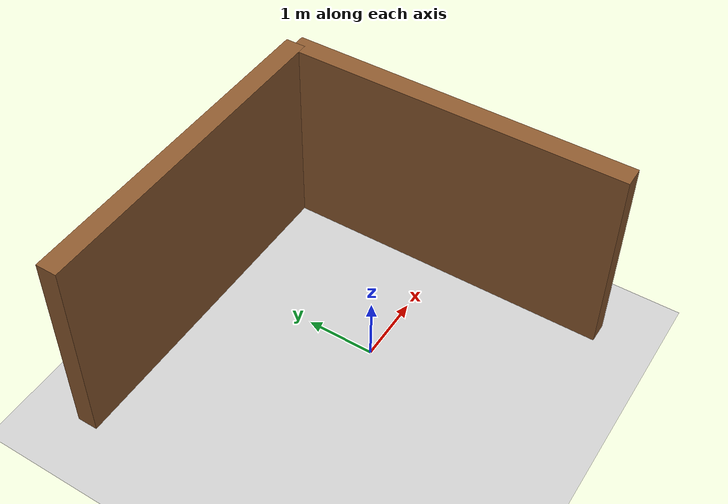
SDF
<?xml version="1.0" encoding="UTF-8"?>
<sdf version="1.9">
  <world name="pg_corner">
    <physics type="ode">
      <max_step_size>0.004</max_step_size>
      <real_time_factor>1.0</real_time_factor>
      <real_time_update_rate>250</real_time_update_rate>
    </physics>
    <gravity>0 0 -9.8</gravity>
    <magnetic_field>6e-06 2.3e-05 -4.2e-05</magnetic_field>
    <atmosphere type="adiabatic"/>
    <scene>
      <grid>false</grid>
      <ambient>0.4 0.4 0.4 1</ambient>
      <background>0.7 0.7 0.7 1</background>
      <shadows>true</shadows>
    </scene>
    <model name="ground_plane">
      <static>true</static>
      <link name="link">
        <collision name="collision">
          <geometry>
            <plane>
              <normal>0 0 1</normal>
              <size>1 1</size>
            </plane>
          </geometry>
          <surface>
            <friction>
              <ode/>
            </friction>
            <bounce/>
            <contact/>
          </surface>
        </collision>
        <visual name="visual">
          <geometry>
            <plane>
              <normal>0 0 1</normal>
              <size>500 500</size>
            </plane>
          </geometry>
          <material>
            <ambient>0.8 0.8 0.8 1</ambient>
            <diffuse>0.8 0.8 0.8 1</diffuse>
            <specular>0.8 0.8 0.8 1</specular>
          </material>
        </visual>
        <pose>0 0 0 0 -0 0</pose>
        <inertial>
          <pose>0 0 0 0 -0 0</pose>
          <mass>1</mass>
          <inertia>
            <ixx>1</ixx>
            <ixy>0</ixy>
            <ixz>0</ixz>
            <iyy>1</iyy>
            <iyz>0</iyz>
            <izz>1</izz>
          </inertia>
        </inertial>
        <enable_wind>false</enable_wind>
      </link>
      <pose>0 0 0 0 -0 0</pose>
      <self_collide>false</self_collide>
    </model>
    <light name="sunUTC" type="directional">
      <pose>0 0 500 0 -0 0</pose>
      <cast_shadows>true</cast_shadows>
      <intensity>1</intensity>
      <direction>0.001 0.625 -0.78</direction>
      <diffuse>0.904 0.904 0.904 1</diffuse>
      <specular>0.271 0.271 0.271 1</specular>
      <attenuation>
        <range>2000</range>
        <linear>0</linear>
        <constant>1</constant>
        <quadratic>0</quadratic>
      </attenuation>
      <spot>
        <inner_angle>0</inner_angle>
        <outer_angle>0</outer_angle>
        <falloff>0</falloff>
      </spot>
    </light>
    <spherical_coordinates>
      <surface_model>EARTH_WGS84</surface_model>
      <world_frame_orientation>ENU</world_frame_orientation>
      <latitude_deg>47.397971057728974</latitude_deg>
      <longitude_deg> 8.546163739800146</longitude_deg>
      <elevation>0</elevation>
    </spherical_coordinates>
    <model name="wall1">
       <pose>2 0 1.5 0 0 0</pose>
      <static>true</static>
      <link name="link1">
      <collision name="collision">
        <geometry>
          <box>
            <size>0.3 5 3</size>
          </box>
        </geometry>
      </collision>
      <visual name="visual">
        <geometry>
          <box>
            <size>0.3 5 3</size>
          </box>
        </geometry>
        <material>
          <!-- Brown material -->
          <ambient>0.25 0.15 0.08 1</ambient>
          <diffuse>0.55 0.35 0.18 1</diffuse>
          <specular>0.1 0.08 0.05 1</specular>
        </material>
      </visual>
      </link>
    </model>

        <model name="wall2">
      <!-- Rotated 90 degrees (pi/2 yaw) so long side points along +X -->
      <pose>-0.5 2.5 1.5 0 0 1.5708</pose>
      <static>true</static>
      <link name="link1">
      <collision name="collision">
        <geometry>
          <box>
            <size>0.3 5 3</size>
          </box>
        </geometry>
      </collision>
      <visual name="visual">
        <geometry>
          <box>
            <size>0.3 5 3</size>
          </box>
        </geometry>
        <material>
          <!-- Brown material -->
          <ambient>0.25 0.15 0.08 1</ambient>
          <diffuse>0.55 0.35 0.18 1</diffuse>
          <specular>0.1 0.08 0.05 1</specular>
        </material>
      </visual>
      </link>
    </model>

  </world>
</sdf>
